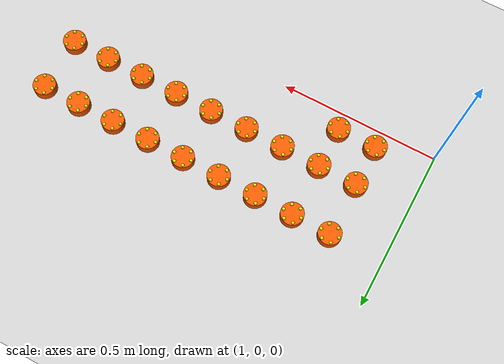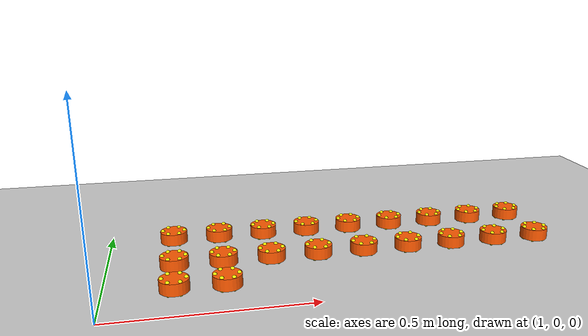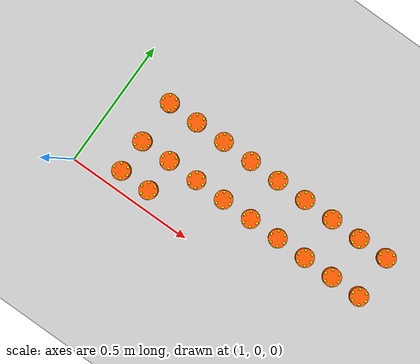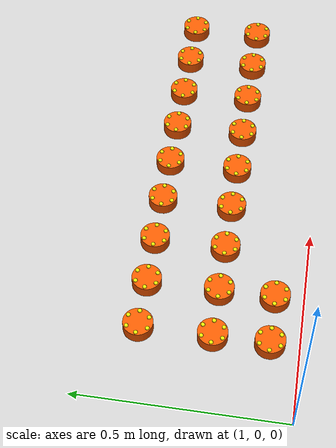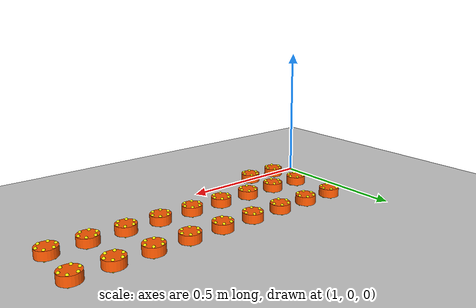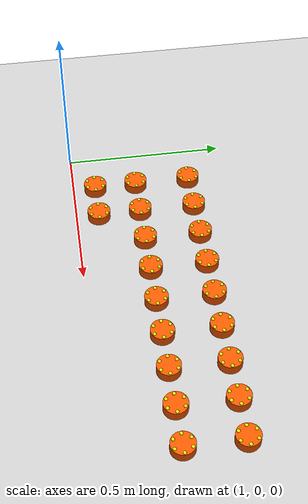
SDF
<sdf version="1.4">
 <world name="LLSF">
  <physics type="ode">
   <max_step_size>0.001</max_step_size>
   <real_time_factor>1</real_time_factor>
   <real_time_update_rate>1000</real_time_update_rate>
  </physics>
  <include><uri>model://ground_plane</uri></include>
  <include><uri>model://sun</uri></include>
  <light name="light" type="point">
   <cast_shadows>false</cast_shadows>
   <pose>-12 3 1 0 0 0</pose>
   <diffuse>127 127 127 255</diffuse>
   <specular>25 25 25 255</specular>
   <attenuation>
    <range>20.0</range>
    <linear>0.01</linear>
    <constant>0.7</constant>
    <quadratic>0.00</quadratic>
   </attenuation>
  </light>
  <include><name>Puck0</name><uri>model://puck</uri><pose>1.17 0.37 0.03 0 0 0</pose></include>
  <include><name>Puck1</name><uri>model://puck</uri><pose>1.29 0.37 0.03 0 0 0</pose></include>
  <include><name>Puck2</name><uri>model://puck</uri><pose>1.41 0.37 0.03 0 0 0</pose></include>
  <include><name>Puck3</name><uri>model://puck</uri><pose>1.53 0.37 0.03 0 0 0</pose></include>
  <include><name>Puck4</name><uri>model://puck</uri><pose>1.65 0.37 0.03 0 0 0</pose></include>
  <include><name>Puck5</name><uri>model://puck</uri><pose>1.77 0.37 0.03 0 0 0</pose></include>
  <include><name>Puck6</name><uri>model://puck</uri><pose>1.89 0.37 0.03 0 0 0</pose></include>
  <include><name>Puck7</name><uri>model://puck</uri><pose>2.01 0.37 0.03 0 0 0</pose></include>
  <include><name>Puck8</name><uri>model://puck</uri><pose>1.17 0.2 0.03 0 0 0</pose></include>
  <include><name>Puck9</name><uri>model://puck</uri><pose>1.29 0.2 0.03 0 0 0</pose></include>
  <include><name>Puck10</name><uri>model://puck</uri><pose>1.41 0.2 0.03 0 0 0</pose></include>
  <include><name>Puck11</name><uri>model://puck</uri><pose>1.53 0.2 0.03 0 0 0</pose></include>
  <include><name>Puck12</name><uri>model://puck</uri><pose>1.65 0.2 0.03 0 0 0</pose></include>
  <include><name>Puck13</name><uri>model://puck</uri><pose>1.77 0.2 0.03 0 0 0</pose></include>
  <include><name>Puck14</name><uri>model://puck</uri><pose>1.89 0.2 0.03 0 0 0</pose></include>
  <include><name>Puck15</name><uri>model://puck</uri><pose>2.01 0.2 0.03 0 0 0</pose></include>
  <include><name>Puck16</name><uri>model://puck</uri><pose>1.29 0.07 0.03 0 0 0</pose></include>
  <include><name>Puck17</name><uri>model://puck</uri><pose>1.17 0.07 0.03 0 0 0</pose></include>
  <include><name>Puck18</name><uri>model://puck</uri><pose>2.13 0.37 0.03 0 0 0</pose></include>
  <include><name>Puck19</name><uri>model://puck</uri><pose>2.13 0.2 0.03 0 0 0</pose></include>
  <plugin name="world" filename="libllsf.so"/>
 </world>
</sdf>

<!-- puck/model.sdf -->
<sdf version="1.4">
  <model name="puck">
    <static>false</static>
    <link name="cylinder">
      <pose>0 0 0.015 0 0 0 </pose>
      <gravity>true</gravity>
      <inertial>
        <mass>50</mass>
      </inertial>
      <collision name="cylinder_collision">
        <geometry>
          <cylinder>
            <radius>0.0375</radius>
	    <length>0.03</length>
          </cylinder>
        </geometry>
	<surface>
	  <friction>
	    <ode>
	      <mu>1.0</mu>
              <mu2>1.0</mu2>
              <slip1>0.0</slip1>
              <slip2>0.0</slip2>
	    </ode>
	  </friction>
	</surface>
      </collision>
      <collision name="top_collision">
        <geometry>
          <box>
	    <size>0.053 0.053 0.03</size>
          </box>
        </geometry>
      </collision>
      <visual name="cylinder_visual">
        <cast_shadows>false</cast_shadows>
        <geometry>
          <cylinder>
            <radius>0.035</radius>
	    <length>0.03</length>
          </cylinder>
        </geometry>
	<material>
	  <ambient>1.0 0.35 0.0 1</ambient>
	  <diffuse>1.0 0.35 0.0 1</diffuse>
	</material>
      </visual>
      <visual name="noppel_up_0">
	<pose>0.028 0 0.015 0 0 0 </pose>
        <cast_shadows>false</cast_shadows>
        <geometry>
          <sphere>
            <radius>0.005</radius>
          </sphere>
        </geometry>
	<material>
	  <ambient>1.0 1.0 0.0 1</ambient>
	  <diffuse>1.0 1.0 0.0 1</diffuse>
	</material>
      </visual>
      <visual name="noppel_up_1">
	<pose>0.014 0.024 0.015 0 0 0 </pose>
        <cast_shadows>false</cast_shadows>
        <geometry>
          <sphere>
            <radius>0.005</radius>
          </sphere>
        </geometry>
	<material>
	  <ambient>1.0 1.0 0.0 1</ambient>
	  <diffuse>1.0 1.0 0.0 1</diffuse>
	</material>
      </visual>
      <visual name="noppel_up_2">
	<pose>-0.014 0.024 0.015 0 0 0 </pose>
        <cast_shadows>false</cast_shadows>
        <geometry>
          <sphere>
            <radius>0.005</radius>
          </sphere>
        </geometry>
	<material>
	  <ambient>1.0 1.0 0.0 1</ambient>
	  <diffuse>1.0 1.0 0.0 1</diffuse>
	</material>
      </visual>
      <visual name="noppel_up_3">
	<pose>-0.028 0 0.015 0 0 0 </pose>
        <cast_shadows>false</cast_shadows>
        <geometry>
          <sphere>
            <radius>0.005</radius>
          </sphere>
        </geometry>
	<material>
	  <ambient>1.0 1.0 0.0 1</ambient>
	  <diffuse>1.0 1.0 0.0 1</diffuse>
	</material>
      </visual>
      <visual name="noppel_up_4">
	<pose>-0.014 -0.024 0.015 0 0 0 </pose>
        <cast_shadows>false</cast_shadows>
        <geometry>
          <sphere>
            <radius>0.005</radius>
          </sphere>
        </geometry>
	<material>
	  <ambient>1.0 1.0 0.0 1</ambient>
	  <diffuse>1.0 1.0 0.0 1</diffuse>
	</material>
      </visual>
      <visual name="noppel_up_5">
	<pose>0.014 -0.024 0.015 0 0 0 </pose>
        <cast_shadows>false</cast_shadows>
        <geometry>
          <sphere>
            <radius>0.005</radius>
          </sphere>
        </geometry>
	<material>
	  <ambient>1.0 1.0 0.0 1</ambient>
	  <diffuse>1.0 1.0 0.0 1</diffuse>
	</material>
      </visual>
      <visual name="noppel_down_0">
	<pose>0.028 0 -0.015 0 0 0 </pose>
        <cast_shadows>false</cast_shadows>
        <geometry>
          <sphere>
            <radius>0.005</radius>
          </sphere>
        </geometry>
	<material>
	  <ambient>1.0 1.0 0.0 1</ambient>
	  <diffuse>1.0 1.0 0.0 1</diffuse>
	</material>
      </visual>
      <visual name="noppel_down_1">
	<pose>0.014 0.024 -0.015 0 0 0 </pose>
        <cast_shadows>false</cast_shadows>
        <geometry>
          <sphere>
            <radius>0.005</radius>
          </sphere>
        </geometry>
	<material>
	  <ambient>1.0 1.0 0.0 1</ambient>
	  <diffuse>1.0 1.0 0.0 1</diffuse>
	</material>
      </visual>
      <visual name="noppel_down_2">
	<pose>-0.014 0.024 -0.015 0 0 0 </pose>
        <cast_shadows>false</cast_shadows>
        <geometry>
          <sphere>
            <radius>0.005</radius>
          </sphere>
        </geometry>
	<material>
	  <ambient>1.0 1.0 0.0 1</ambient>
	  <diffuse>1.0 1.0 0.0 1</diffuse>
	</material>
      </visual>
      <visual name="noppel_down_3">
	<pose>-0.028 0 -0.015 0 0 0 </pose>
        <cast_shadows>false</cast_shadows>
        <geometry>
          <sphere>
            <radius>0.005</radius>
          </sphere>
        </geometry>
	<material>
	  <ambient>1.0 1.0 0.0 1</ambient>
	  <diffuse>1.0 1.0 0.0 1</diffuse>
	</material>
      </visual>
      <visual name="noppel_down_4">
	<pose>-0.014 -0.024 -0.015 0 0 0 </pose>
        <cast_shadows>false</cast_shadows>
        <geometry>
          <sphere>
            <radius>0.005</radius>
          </sphere>
        </geometry>
	<material>
	  <ambient>1.0 1.0 0.0 1</ambient>
	  <diffuse>1.0 1.0 0.0 1</diffuse>
	</material>
      </visual>
      <visual name="noppel_down_5">
	<pose>0.014 -0.024 -0.015 0 0 0 </pose>
        <cast_shadows>false</cast_shadows>
        <geometry>
          <sphere>
            <radius>0.005</radius>
          </sphere>
        </geometry>
	<material>
	  <ambient>1.0 1.0 0.0 1</ambient>
	  <diffuse>1.0 1.0 0.0 1</diffuse>
	</material>
      </visual>
    </link>
  </model>
</sdf>
